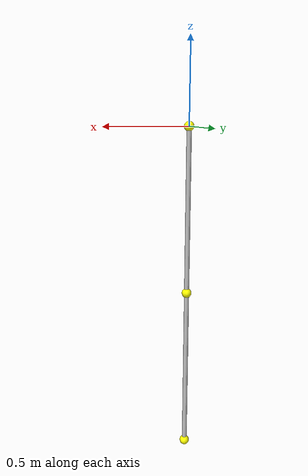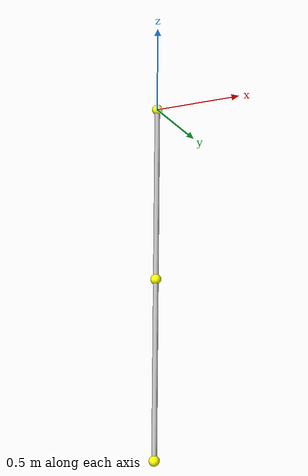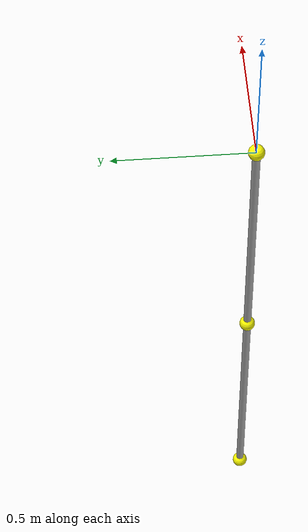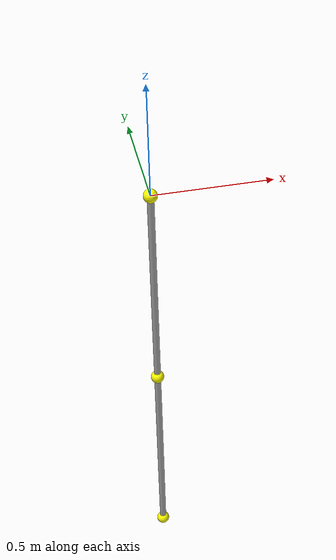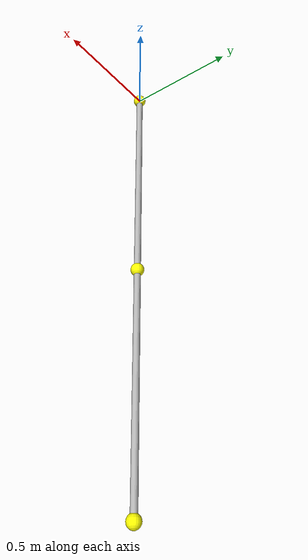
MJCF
<mujoco model="2D_UpperLimb">

  <compiler inertiafromgeom = "auto"
            angle 					= "radian" />

						<option  timestep  = '0.0001'
										iterations = '50'
										    solver = 'PGS'
										integrator = 'Euler'
										   gravity = "0 0 0"
									   collision = 'all' >

							<flag energy = 'enable'/>

						</option>

  <asset>
    <!-- Texture of the surrounding sky box
         setting everything as white-ish color for better visualization -->
     <texture type 		= "skybox"
              builtin = "flat"
              rgb1 		= "1 1 1"
              rgb2		= "1 1 1"
              width 	= "100"
              height 	= "100"/>

     <!-- Joint and Limb Color -->
     <material name = "JointColor" rgba = "1.0 1.0 0.0 1" />
     <material name = "LimbColor"  rgba = "0.7 0.7 0.7 1" />
  </asset>

  <worldbody>

		<body name='cameramover' mocap='true' pos='0 0 0'>
				<camera name='mycamera' pos='0.0 2.0 2.0' euler='1.5707 0 0'/>
  	</body>

    <!-- ============ UPPER ARM START =============== -->
		<body name='upperArm' pos='0 0 0' euler='0 0 0'>
			<inertial pos='0 0 -0.5'     mass='1'         diaginertia='1 1 1'/>
			<geom name='shoulderGEOM' type='sphere' pos='0 0 0' material='JointColor' size='0.0294' mass='0'/>
			<joint name='shoulderFlexExt' ref='0' type='hinge' stiffness='0' pos='0 0 0' axis='0 -1 0' />
			<joint name='shoulderAddAbd'  ref='0'  type='hinge' stiffness='0' pos='0 0 0' axis='-1 0 0' />
			<joint name='shoulderMedLat'  ref='0'  type='hinge' stiffness='0' pos='0 0 0' axis=' 0 0 1' />
			<site name='upperArmCOM' pos='0 0 -0.5' />
			<geom type='cylinder' fromto='0 0 0 0 0 -1.0' material='LimbColor' mass='0' size='0.0147'/>
		<!-- ============ UPPER ARM END   =============== -->

      <!-- ============ FORE ARM START =============== -->
			<body name='foreArm' pos='0 0 -1' euler='0 0 0'>
				<inertial pos='0 0 -0.5' mass='1'  diaginertia='1 1 1'/>
				<geom name='elbowGEOM' type='sphere' pos='0 0 0' material='JointColor' size='0.0294' mass='0'/>
				<joint name='elbow' ref='0' type='hinge' stiffness='0' pos='0 0 0' axis='0 -1 0'/>
				<geom type='cylinder' fromto='0 0 0 0 0 -1' material='LimbColor' mass='0' size='0.0147'/>
				<site name='foreArmCOM' pos='0 0 -0.5' />
				<geom name='EEGEOM' type='sphere' pos='0 0 -1' material='JointColor' size='0.0294' mass='0'/>
			</body>
			<!-- ============ FORE ARM END   =============== -->

		</body>

  </worldbody>

	<actuator>

		<motor joint = 'shoulderFlexExt' name = 'shoulderFlexExtTorqueMotor' forcelimited = 'false'/>
		<motor joint = 'shoulderAddAbd'  name = 'shoulderAddAbdTorqueMotor'  forcelimited = 'false'/>
		<motor joint = 'shoulderMedLat'  name = 'shoulderMedLatTorqueMotor'  forcelimited = 'false'/>
    <motor joint = 'elbow'           name = 'elbowTorqueMotor'           forcelimited = 'false'/>

  </actuator>

</mujoco>
